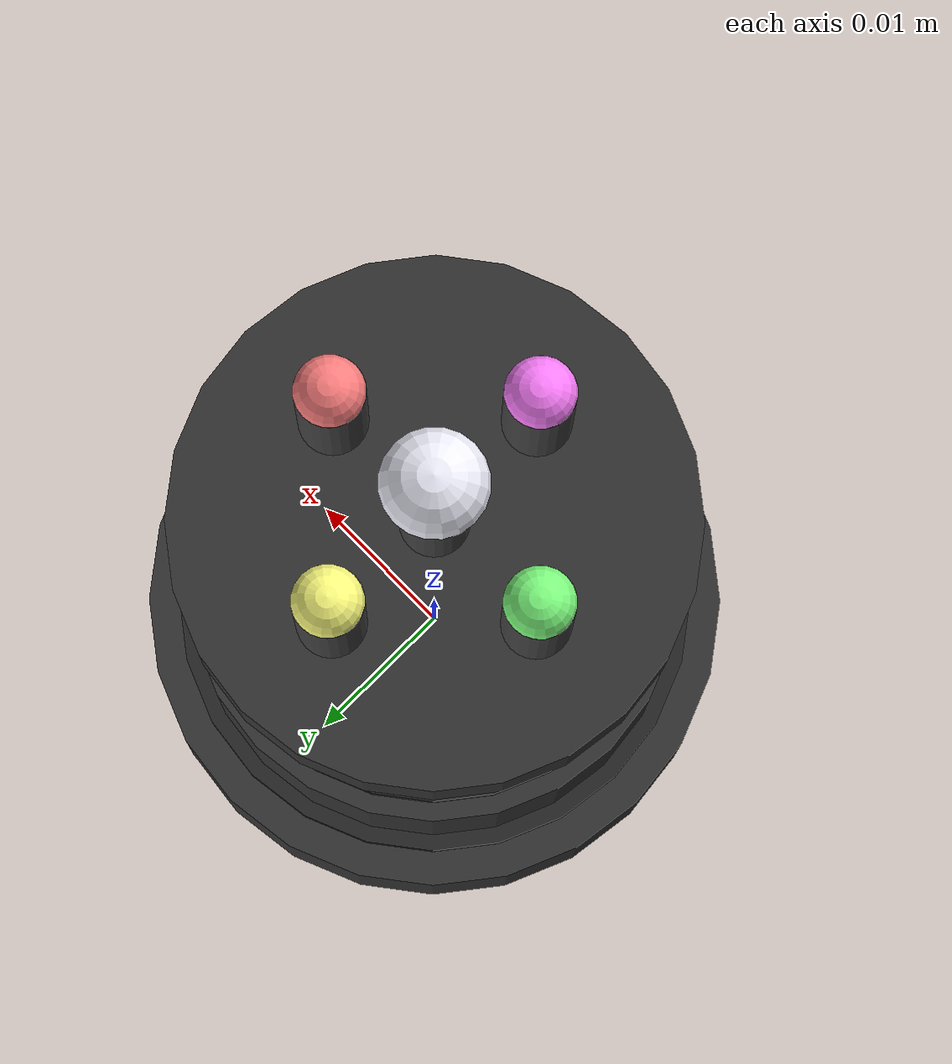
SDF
<?xml version="1.0" ?>
<sdf version="1.6">
  <model name="chess_queen_black">
    <link name="link">
      <pose>0 0 0 0 0 0</pose>

      <inertial>
        <mass>0.10</mass>
        <pose>0 0 0.025 0 0 0</pose>  <!-- RAISED center of mass -->
        <inertia>
          <ixx>0.00004</ixx>
          <ixy>0</ixy>
          <ixz>0</ixz>
          <iyy>0.00004</iyy>
          <iyz>0</iyz>
          <izz>0.00001</izz>
        </inertia>
      </inertial>

      <!-- Base -->
      <collision name="base_collision">
        <pose>0 0 0.005 0 0 0</pose>
        <geometry>
          <cylinder>
            <radius>0.018</radius>
            <length>0.010</length>
          </cylinder>
        </geometry>
        <surface>
          <friction>
            <ode>
              <mu>0.8</mu>
              <mu2>0.8</mu2>
            </ode>
          </friction>
          <bounce>
            <restitution_coefficient>0.1</restitution_coefficient>
          </bounce>
        </surface>
      </collision>

      <!-- Main body (EXTENDED for height) -->
      <collision name="body_bottom_collision">
        <pose>0 0 0.016 0 0 0</pose>  <!-- RAISED -->
        <geometry>
          <cylinder>
            <radius>0.015</radius>
            <length>0.016</length>  <!-- TALLER -->
          </cylinder>
        </geometry>
      </collision>

      <collision name="body_middle_collision">
        <pose>0 0 0.028 0 0 0</pose>  <!-- RAISED -->
        <geometry>
          <cylinder>
            <radius>0.013</radius>
            <length>0.012</length>  <!-- TALLER -->
          </cylinder>
        </geometry>
      </collision>

      <collision name="body_top_collision">
        <pose>0 0 0.038 0 0 0</pose>  <!-- RAISED -->
        <geometry>
          <cylinder>
            <radius>0.014</radius>
            <length>0.008</length>  <!-- TALLER -->
          </cylinder>
        </geometry>
      </collision>

      <!-- Crown base -->
      <collision name="crown_base_collision">
        <pose>0 0 0.044 0 0 0</pose>  <!-- RAISED -->
        <geometry>
          <cylinder>
            <radius>0.015</radius>
            <length>0.006</length>  <!-- TALLER -->
          </cylinder>
        </geometry>
      </collision>

      <!-- Crown points (RAISED) -->
      <collision name="crown_point_center">
        <pose>0 0 0.054 0 0 0</pose>  <!-- RAISED -->
        <geometry>
          <cylinder>
            <radius>0.002</radius>
            <length>0.016</length>  <!-- TALLER -->
          </cylinder>
        </geometry>
      </collision>

      <collision name="crown_point_1">
        <pose>0.008 0 0.051 0 0 0</pose>  <!-- RAISED -->
        <geometry>
          <cylinder>
            <radius>0.002</radius>
            <length>0.012</length>  <!-- TALLER -->
          </cylinder>
        </geometry>
      </collision>

      <collision name="crown_point_2">
        <pose>-0.008 0 0.051 0 0 0</pose>  <!-- RAISED -->
        <geometry>
          <cylinder>
            <radius>0.002</radius>
            <length>0.012</length>  <!-- TALLER -->
          </cylinder>
        </geometry>
      </collision>

      <collision name="crown_point_3">
        <pose>0 0.008 0.051 0 0 0</pose>  <!-- RAISED -->
        <geometry>
          <cylinder>
            <radius>0.002</radius>
            <length>0.012</length>  <!-- TALLER -->
          </cylinder>
        </geometry>
      </collision>

      <collision name="crown_point_4">
        <pose>0 -0.008 0.051 0 0 0</pose>  <!-- RAISED -->
        <geometry>
          <cylinder>
            <radius>0.002</radius>
            <length>0.012</length>  <!-- TALLER -->
          </cylinder>
        </geometry>
      </collision>

      <!-- Crown spheres (RAISED) -->
      <collision name="crown_jewel_center">
        <pose>0 0 0.062 0 0 0</pose>  <!-- RAISED -->
        <geometry>
          <sphere>
            <radius>0.003</radius>
          </sphere>
        </geometry>
      </collision>

      <collision name="crown_jewel_1">
        <pose>0.008 0 0.057 0 0 0</pose>  <!-- RAISED -->
        <geometry>
          <sphere>
            <radius>0.002</radius>
          </sphere>
        </geometry>
      </collision>

      <collision name="crown_jewel_2">
        <pose>-0.008 0 0.057 0 0 0</pose>  <!-- RAISED -->
        <geometry>
          <sphere>
            <radius>0.002</radius>
          </sphere>
        </geometry>
      </collision>

      <collision name="crown_jewel_3">
        <pose>0 0.008 0.057 0 0 0</pose>  <!-- RAISED -->
        <geometry>
          <sphere>
            <radius>0.002</radius>
          </sphere>
        </geometry>
      </collision>

      <collision name="crown_jewel_4">
        <pose>0 -0.008 0.057 0 0 0</pose>  <!-- RAISED -->
        <geometry>
          <sphere>
            <radius>0.002</radius>
          </sphere>
        </geometry>
      </collision>

      <!-- Visuals (BLACK colors) -->
      <visual name="base_visual">
        <pose>0 0 0.005 0 0 0</pose>
        <geometry>
          <cylinder>
            <radius>0.018</radius>
            <length>0.010</length>
          </cylinder>
        </geometry>
        <material>
          <ambient>0.1 0.1 0.1 1</ambient>
          <diffuse>0.2 0.2 0.2 1</diffuse>
          <specular>0.4 0.4 0.4 1</specular>
        </material>
      </visual>

      <visual name="body_bottom_visual">
        <pose>0 0 0.016 0 0 0</pose>
        <geometry>
          <cylinder>
            <radius>0.015</radius>
            <length>0.016</length>
          </cylinder>
        </geometry>
        <material>
          <ambient>0.1 0.1 0.1 1</ambient>
          <diffuse>0.2 0.2 0.2 1</diffuse>
          <specular>0.4 0.4 0.4 1</specular>
        </material>
      </visual>

      <visual name="body_middle_visual">
        <pose>0 0 0.028 0 0 0</pose>
        <geometry>
          <cylinder>
            <radius>0.013</radius>
            <length>0.012</length>
          </cylinder>
        </geometry>
        <material>
          <ambient>0.1 0.1 0.1 1</ambient>
          <diffuse>0.2 0.2 0.2 1</diffuse>
          <specular>0.4 0.4 0.4 1</specular>
        </material>
      </visual>

      <visual name="body_top_visual">
        <pose>0 0 0.038 0 0 0</pose>
        <geometry>
          <cylinder>
            <radius>0.014</radius>
            <length>0.008</length>
          </cylinder>
        </geometry>
        <material>
          <ambient>0.1 0.1 0.1 1</ambient>
          <diffuse>0.2 0.2 0.2 1</diffuse>
          <specular>0.4 0.4 0.4 1</specular>
        </material>
      </visual>

      <visual name="crown_base_visual">
        <pose>0 0 0.044 0 0 0</pose>
        <geometry>
          <cylinder>
            <radius>0.015</radius>
            <length>0.006</length>
          </cylinder>
        </geometry>
        <material>
          <ambient>0.1 0.1 0.1 1</ambient>
          <diffuse>0.2 0.2 0.2 1</diffuse>
          <specular>0.5 0.5 0.5 1</specular>
        </material>
      </visual>

      <!-- Crown points visuals -->
      <visual name="crown_point_center_visual">
        <pose>0 0 0.054 0 0 0</pose>
        <geometry>
          <cylinder>
            <radius>0.002</radius>
            <length>0.016</length>
          </cylinder>
        </geometry>
        <material>
          <ambient>0.15 0.15 0.15 1</ambient>
          <diffuse>0.25 0.25 0.25 1</diffuse>
          <specular>0.6 0.6 0.6 1</specular>
        </material>
      </visual>

      <visual name="crown_point_1_visual">
        <pose>0.008 0 0.051 0 0 0</pose>
        <geometry>
          <cylinder>
            <radius>0.002</radius>
            <length>0.012</length>
          </cylinder>
        </geometry>
        <material>
          <ambient>0.15 0.15 0.15 1</ambient>
          <diffuse>0.25 0.25 0.25 1</diffuse>
          <specular>0.6 0.6 0.6 1</specular>
        </material>
      </visual>

      <visual name="crown_point_2_visual">
        <pose>-0.008 0 0.051 0 0 0</pose>
        <geometry>
          <cylinder>
            <radius>0.002</radius>
            <length>0.012</length>
          </cylinder>
        </geometry>
        <material>
          <ambient>0.15 0.15 0.15 1</ambient>
          <diffuse>0.25 0.25 0.25 1</diffuse>
          <specular>0.6 0.6 0.6 1</specular>
        </material>
      </visual>

      <visual name="crown_point_3_visual">
        <pose>0 0.008 0.051 0 0 0</pose>
        <geometry>
          <cylinder>
            <radius>0.002</radius>
            <length>0.012</length>
          </cylinder>
        </geometry>
        <material>
          <ambient>0.15 0.15 0.15 1</ambient>
          <diffuse>0.25 0.25 0.25 1</diffuse>
          <specular>0.6 0.6 0.6 1</specular>
        </material>
      </visual>

      <visual name="crown_point_4_visual">
        <pose>0 -0.008 0.051 0 0 0</pose>
        <geometry>
          <cylinder>
            <radius>0.002</radius>
            <length>0.012</length>
          </cylinder>
        </geometry>
        <material>
          <ambient>0.15 0.15 0.15 1</ambient>
          <diffuse>0.25 0.25 0.25 1</diffuse>
          <specular>0.6 0.6 0.6 1</specular>
        </material>
      </visual>

      <!-- Crown jewels visuals (bright colors for contrast against black) -->
      <visual name="crown_jewel_center_visual">
        <pose>0 0 0.062 0 0 0</pose>
        <geometry>
          <sphere>
            <radius>0.003</radius>
          </sphere>
        </geometry>
        <material>
          <ambient>0.9 0.9 1.0 1</ambient>
          <diffuse>0.95 0.95 1.0 1</diffuse>
          <specular>0.8 0.8 0.8 1</specular>
        </material>
      </visual>

      <visual name="crown_jewel_1_visual">
        <pose>0.008 0 0.057 0 0 0</pose>
        <geometry>
          <sphere>
            <radius>0.002</radius>
          </sphere>
        </geometry>
        <material>
          <ambient>1.0 0.3 0.3 1</ambient>
          <diffuse>1.0 0.5 0.5 1</diffuse>
          <specular>0.8 0.8 0.8 1</specular>
        </material>
      </visual>

      <visual name="crown_jewel_2_visual">
        <pose>-0.008 0 0.057 0 0 0</pose>
        <geometry>
          <sphere>
            <radius>0.002</radius>
          </sphere>
        </geometry>
        <material>
          <ambient>0.3 1.0 0.3 1</ambient>
          <diffuse>0.5 1.0 0.5 1</diffuse>
          <specular>0.8 0.8 0.8 1</specular>
        </material>
      </visual>

      <visual name="crown_jewel_3_visual">
        <pose>0 0.008 0.057 0 0 0</pose>
        <geometry>
          <sphere>
            <radius>0.002</radius>
          </sphere>
        </geometry>
        <material>
          <ambient>1.0 1.0 0.3 1</ambient>
          <diffuse>1.0 1.0 0.5 1</diffuse>
          <specular>0.8 0.8 0.8 1</specular>
        </material>
      </visual>

      <visual name="crown_jewel_4_visual">
        <pose>0 -0.008 0.057 0 0 0</pose>
        <geometry>
          <sphere>
            <radius>0.002</radius>
          </sphere>
        </geometry>
        <material>
          <ambient>1.0 0.3 1.0 1</ambient>
          <diffuse>1.0 0.5 1.0 1</diffuse>
          <specular>0.8 0.8 0.8 1</specular>
        </material>
      </visual>

      <!-- Decorative bands -->
      <visual name="band_1">
        <pose>0 0 0.012 0 0 0</pose>
        <geometry>
          <cylinder>
            <radius>0.016</radius>
            <length>0.001</length>
          </cylinder>
        </geometry>
        <material>
          <ambient>0.05 0.05 0.05 1</ambient>
          <diffuse>0.15 0.15 0.15 1</diffuse>
          <specular>0.3 0.3 0.3 1</specular>
        </material>
      </visual>

      <visual name="band_2">
        <pose>0 0 0.026 0 0 0</pose>
        <geometry>
          <cylinder>
            <radius>0.014</radius>
            <length>0.001</length>
          </cylinder>
        </geometry>
        <material>
          <ambient>0.05 0.05 0.05 1</ambient>
          <diffuse>0.15 0.15 0.15 1</diffuse>
          <specular>0.3 0.3 0.3 1</specular>
        </material>
      </visual>

      <visual name="band_3">
        <pose>0 0 0.036 0 0 0</pose>
        <geometry>
          <cylinder>
            <radius>0.014</radius>
            <length>0.001</length>
          </cylinder>
        </geometry>
        <material>
          <ambient>0.05 0.05 0.05 1</ambient>
          <diffuse>0.15 0.15 0.15 1</diffuse>
          <specular>0.3 0.3 0.3 1</specular>
        </material>
      </visual>
    </link>
  </model>
</sdf>
